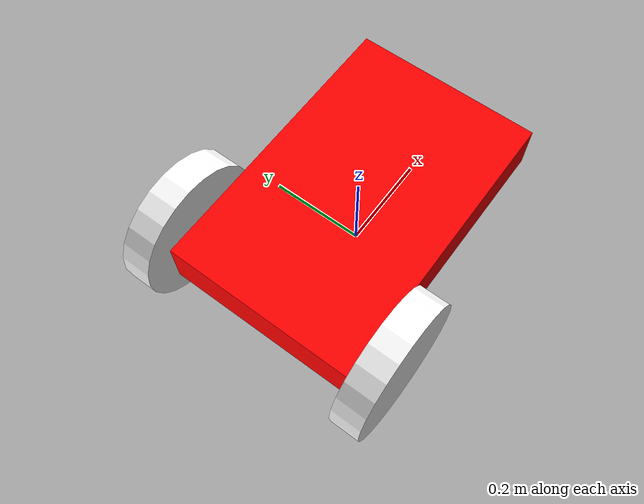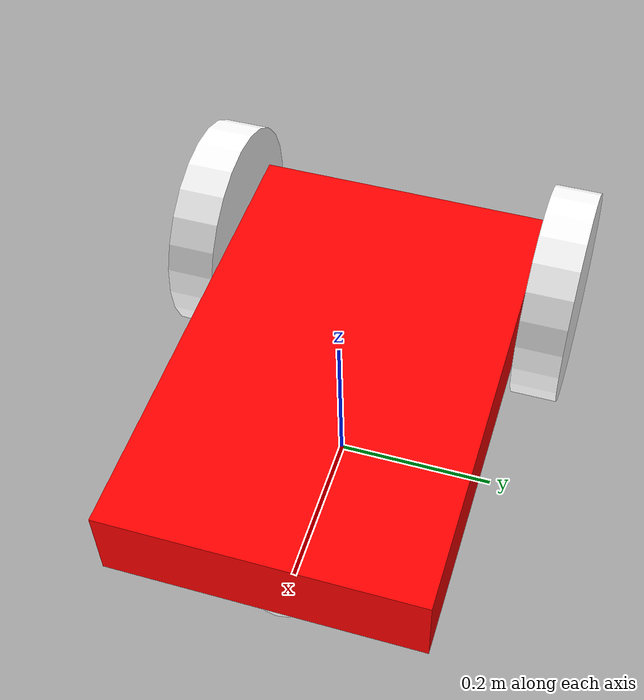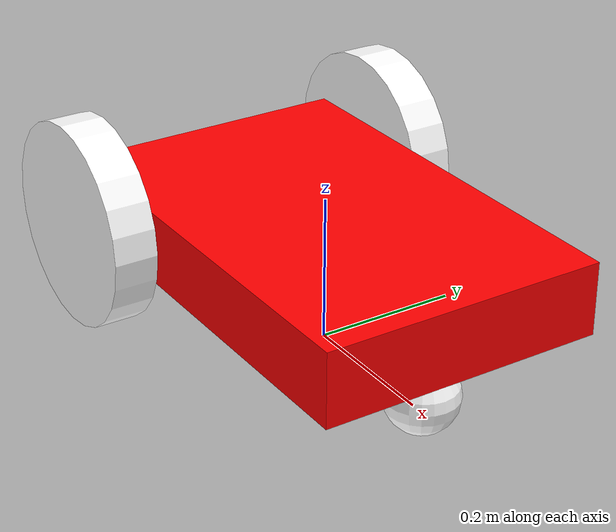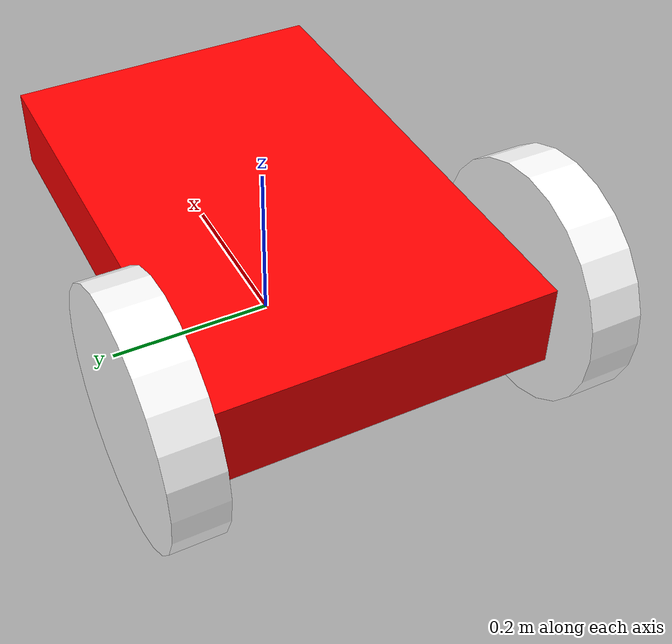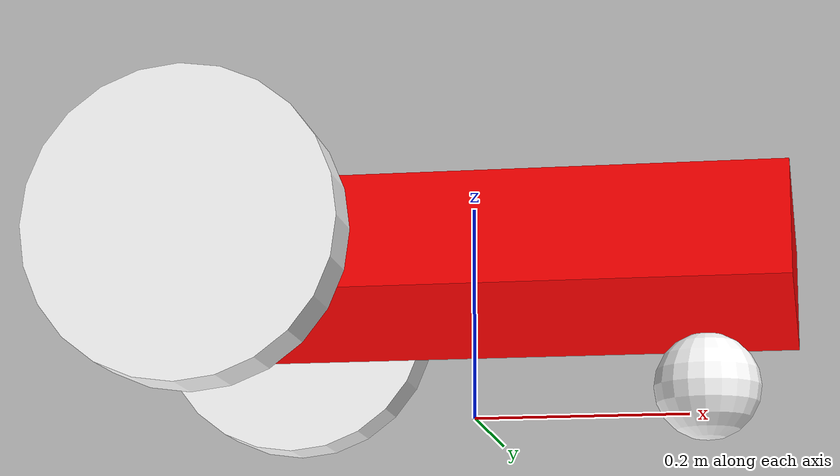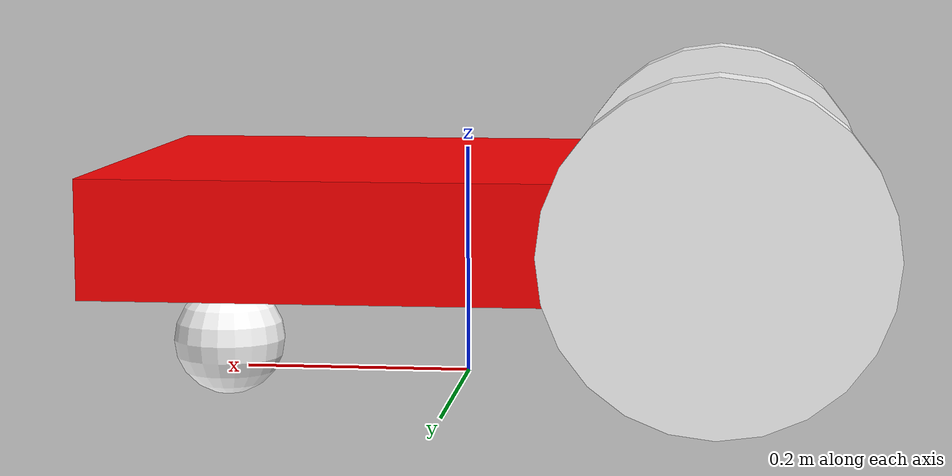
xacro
<?xml version="1.0" ?>
<robot name="dumpbot" xmlns:xacro="http://ros.org/wiki/xacro">

  <!-- ****************** ROBOT CONSTANTS *******************************  -->
  <!-- Define the size of the robot's main chassis in meters -->
  <xacro:property name="base_width" value="0.39"/>
  <xacro:property name="base_length" value="0.60"/>
  <xacro:property name="base_height" value="0.10"/>

  <!-- Define the shape of the robot's two driven wheels placed on either side of the robot body in meters -->
  <xacro:property name="wheel_radius" value="0.14"/>
  <xacro:property name="wheel_width" value="0.06"/>

  <!-- Define the shape of the robot's caster wheels in meters -->
  <xacro:property name="caster_radius" value="0.05"/>

  <!-- x-axis points forward, y-axis points to left, z-axis points upwards -->
  <!-- Define the gap between the wheel and chassis along y-axis in meters -->
  <xacro:property name="wheel_ygap" value="0.035"/>

  <!-- Position the wheels along the z-axis -->
  <xacro:property name="wheel_zoff" value="0.05"/>

  <!-- Position the wheels along the x-axis -->
  <xacro:property name="wheel_xoff" value="0.221"/>

  <!-- Position the caster wheel along the x-axis -->
  <xacro:property name="caster_xoff" value="0.217"/>

  <!-- Define intertial property macros  -->
  <xacro:macro name="box_inertia" params="m w h d">
    <inertial>
      <origin xyz="0 0 0" rpy="${pi/2} 0 ${pi/2}"/>
      <mass value="${m}"/>
      <inertia ixx="${(m/12) * (h*h + d*d)}" ixy="0.0" ixz="0.0" iyy="${(m/12) * (w*w + d*d)}" iyz="0.0" izz="${(m/12) * (w*w + h*h)}"/>
    </inertial>
  </xacro:macro>

  <xacro:macro name="cylinder_inertia" params="m r h">
    <inertial>
      <origin xyz="0 0 0" rpy="${pi/2} 0 0" />
      <mass value="${m}"/>
      <inertia ixx="${(m/12) * (3*r*r + h*h)}" ixy = "0" ixz = "0" iyy="${(m/12) * (3*r*r + h*h)}" iyz = "0" izz="${(m/2) * (r*r)}"/>
    </inertial>
  </xacro:macro>

  <xacro:macro name="sphere_inertia" params="m r">
    <inertial>
      <mass value="${m}"/>
      <inertia ixx="${(2/5) * m * (r*r)}" ixy="0.0" ixz="0.0" iyy="${(2/5) * m * (r*r)}" iyz="0.0" izz="${(2/5) * m * (r*r)}"/>
    </inertial>
  </xacro:macro>

  <!-- ****************** ROBOT BASE FOOTPRINT ***************************  -->
  <!-- Define the center of the main robot chassis projected on the ground -->
  <link name="base_footprint"/>

  <!-- The base footprint of the robot is located underneath the chassis -->
  <joint name="base_joint" type="fixed">
    <parent link="base_footprint"/>
    <child link="base_link" />
    <origin xyz="0.0 0.0 ${(wheel_radius+wheel_zoff)}" rpy="0 0 0"/>
  </joint>

  <!-- ********************** ROBOT BASE *********************************  -->
  <link name="base_link">
    <visual>
      <origin xyz="0 0 -0.05" rpy="0 0 0"/>
      <geometry>
        <box size="${base_length} ${base_width} ${base_height}"/>
      </geometry>
      <material name="Red">
        <color rgba="${255/255} ${0/255} ${0/255} 1.0"/>
      </material>
    </visual>

    <collision>
      <geometry>
        <box size="${base_length} ${base_width} ${base_height}"/>
      </geometry>
    </collision>

    <xacro:box_inertia m="40.0" w="${base_width}" d="${base_length}" h="${base_height}"/>

  </link>

  <gazebo reference="base_link">
    <material>Gazebo/Red</material>
  </gazebo>

  <!-- *********************** DRIVE WHEELS ******************************  -->

  <xacro:macro name="wheel" params="prefix x_reflect y_reflect">
    <link name="${prefix}_link">
      <visual>
        <origin xyz="0 0 0" rpy="1.5707963267949 0 0"/>
        <geometry>
            <cylinder radius="${wheel_radius}" length="${wheel_width}"/>
        </geometry>
        <material name="White">
          <color rgba="${255/255} ${255/255} ${255/255} 1.0"/>
        </material>
      </visual>

      <collision>
        <origin xyz="0 0 0" rpy="${pi/2} 0 0"/>
        <geometry>
          <cylinder radius="${wheel_radius}" length="${wheel_width}"/>
        </geometry>
      </collision>

      <xacro:cylinder_inertia m="110.5" r="${wheel_radius}" h="${wheel_width}"/>

    </link>

    <!-- Connect the wheels to the base_link at the appropriate location, and
         define a continuous joint to allow the wheels to freely rotate about
         an axis -->
    <joint name="${prefix}_joint" type="revolute">
      <parent link="base_link"/>
      <child link="${prefix}_link"/>
      <origin xyz="${x_reflect*wheel_xoff} ${y_reflect*(base_width/2+wheel_ygap)} ${-wheel_zoff}" rpy="0 0 0"/>
      <limit upper="3.1415" lower="-3.1415" effort="30" velocity="5.0"/>
      <axis xyz="0 1 0"/>
    </joint>
  </xacro:macro>

  <xacro:wheel prefix="drivewheel_l" x_reflect="-1" y_reflect="1" />
  <xacro:wheel prefix="drivewheel_r" x_reflect="-1" y_reflect="-1" />

  <!-- *********************** CASTER WHEEL ******************************  -->
  <!-- We add a caster wheel. It will be modeled as sphere.
       We define the wheels geometry, material and the joint to connect it to
       base_link at the appropriate location. -->
  <link name="front_caster">
    <visual>
      <geometry>
        <sphere radius="${(caster_radius+wheel_zoff-(base_height/2))}"/>
      </geometry>
      <material name="White">
        <color rgba="${255/255} ${255/255} ${255/255} 1.0"/>
      </material>
    </visual>
    <collision>
      <origin xyz="0 0 0" rpy="0 0 0"/>
      <geometry>
        <sphere radius="${(caster_radius+wheel_zoff-(base_height/2))}"/>
      </geometry>
    </collision>
    <xacro:sphere_inertia m="10.05" r="${(caster_radius+wheel_zoff-(base_height/2))}"/>
  </link>

  <gazebo reference="front_caster">
    <mu1>0.01</mu1>
    <mu2>0.01</mu2>
    <material>Gazebo/White</material>
  </gazebo>

  <joint name="caster_joint" type="fixed">
    <parent link="base_link"/>
    <child link="front_caster"/>
    <origin xyz="${caster_xoff} 0.0 ${-(wheel_radius+wheel_zoff)+(caster_radius/2)}" rpy="0 0 0"/>
  </joint>

  <!-- *********************** IMU SETUP *********************************  -->
  <!-- Each sensor must be attached to a link.                              -->

  <joint name="imu_joint" type="fixed">
    <parent link="base_link"/>
    <child link="imu_link"/>
    <origin xyz="-0.10 0 0.05" rpy="0 0 0"/>
  </joint>

  <link name="imu_link"/>

  <!-- *********************** GPS SETUP **********************************  -->
  <joint name="gps_joint" type="fixed">
    <parent link="base_link"/>
    <child link="gps_link"/>
    <origin xyz="0.10 0 0.05" rpy="0 0 0"/>
  </joint>

  <link name="gps_link"/>

<!-- *********************** WHEEL ODOMETRY ***************************    -->

<gazebo>
  <plugin name="diff_drive" filename="libgazebo_ros_diff_drive.so">
    <ros>
      <namespace></namespace>
    </ros>

    <update_rate>30</update_rate>

    <!-- wheels -->
    <left_joint>drivewheel_l_joint</left_joint>
    <right_joint>drivewheel_r_joint</right_joint>

    <!-- kinematics -->
    <wheel_separation>0.52</wheel_separation>
    <wheel_diameter>0.28</wheel_diameter>

    <!-- limits -->
    <max_wheel_torque>20</max_wheel_torque>
    <max_wheel_acceleration>1.0</max_wheel_acceleration>

    <!-- Receive velocity commands on this ROS topic -->
    <command_topic>cmd_vel</command_topic>

    <!-- output -->
    <!-- When false, publish no wheel odometry data to a ROS topic -->
    <publish_odom>true</publish_odom>

    <!-- When true, publish coordinate transform from odom to base_footprint -->
    <!-- Set to false if you use the robot_localization package to publish this transform -->
    <publish_odom_tf>false</publish_odom_tf>

    <!-- When true, publish coordinate transform from base_link to the wheels -->
    <!-- The robot_state_publisher package is often used to publish this transform -->
    <publish_wheel_tf>false</publish_wheel_tf>

    <odometry_topic>odom</odometry_topic>
    <odometry_frame>odom</odometry_frame>
    <robot_base_frame>base_footprint</robot_base_frame>

    <!-- Odometry source, 0 for ENCODER, 1 for WORLD, defaults to WORLD -->
    <odometry_source>0</odometry_source>

    <!-- Change the ROS topic we will publish the odometry data to -->
    <ros>
      <remapping>odom:=wheel/odometry</remapping>
    </ros>

  </plugin>
</gazebo>

</robot>
